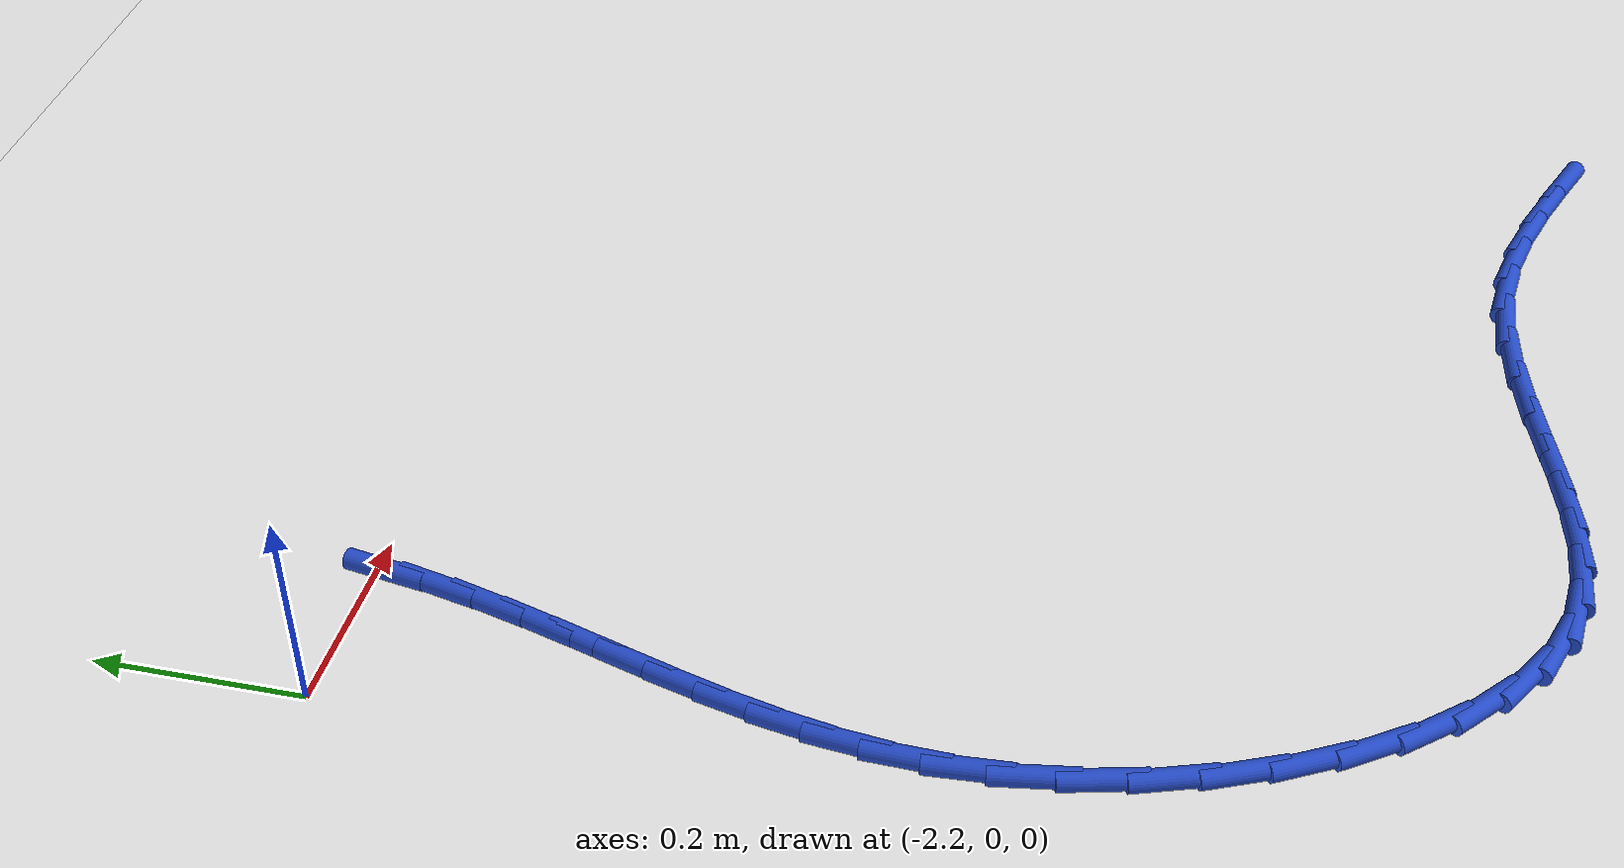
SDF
<sdf version="1.6">
 <world name="default">
  <model name="ground_plane">
   <static>1</static>
   <link name="link">
    <collision name="collision">
     <geometry><plane><normal>0 0 1</normal><size>100 100</size></plane></geometry>
     <surface><friction><ode><mu>100</mu><mu2>50</mu2></ode></friction></surface>
    </collision>
    <visual name="visual">
     <cast_shadows>0</cast_shadows>
     <geometry><plane><normal>0 0 1</normal><size>100 100</size></plane></geometry>
     <material>
      <script><uri>file://media/materials/scripts/gazebo.material</uri><name>Gazebo/WhiteGlow</name></script>
     </material>
    </visual>
   </link>
  </model>
  <model name="line">
   <link name="link_71">
    <pose>-2.041816086609694 -0.012602895293041863 0.01 0 1.57 1.4098534217162904</pose>
    <collision name="collision">
     <geometry><cylinder><radius>0.01</radius><length>0.08</length></cylinder></geometry>
    </collision>
    <visual name="visual">
     <material>
      <script><name>Gazebo/Blue</name><uri>file://media/materials/scripts/gazebo.material</uri></script>
     </material>
     <geometry><cylinder><radius>0.01</radius><length>0.08</length></cylinder></geometry>
    </visual>
   </link>
   <link name="link_72">
    <pose>-2.050435005796596 -0.06569236097580525 0.01 0 1.57 1.3537116298803245</pose>
    <collision name="collision">
     <geometry><cylinder><radius>0.01</radius><length>0.08</length></cylinder></geometry>
    </collision>
    <visual name="visual">
     <material>
      <script><name>Gazebo/Blue</name><uri>file://media/materials/scripts/gazebo.material</uri></script>
     </material>
     <geometry><cylinder><radius>0.01</radius><length>0.08</length></cylinder></geometry>
    </visual>
   </link>
   <link name="link_73">
    <pose>-2.061877272166428 -0.11757053309408935 0.01 0 1.57 1.3121732466424174</pose>
    <collision name="collision">
     <geometry><cylinder><radius>0.01</radius><length>0.08</length></cylinder></geometry>
    </collision>
    <visual name="visual">
     <material>
      <script><name>Gazebo/Blue</name><uri>file://media/materials/scripts/gazebo.material</uri></script>
     </material>
     <geometry><cylinder><radius>0.01</radius><length>0.08</length></cylinder></geometry>
    </visual>
   </link>
   <link name="link_74">
    <pose>-2.075354503261318 -0.1685149566995929 0.01 0 1.57 1.2859686330386246</pose>
    <collision name="collision">
     <geometry><cylinder><radius>0.01</radius><length>0.08</length></cylinder></geometry>
    </collision>
    <visual name="visual">
     <material>
      <script><name>Gazebo/Blue</name><uri>file://media/materials/scripts/gazebo.material</uri></script>
     </material>
     <geometry><cylinder><radius>0.01</radius><length>0.08</length></cylinder></geometry>
    </visual>
   </link>
   <link name="link_75">
    <pose>-2.090078316623393 -0.21880317684401698 0.01 0 1.57 1.2754995097951047</pose>
    <collision name="collision">
     <geometry><cylinder><radius>0.01</radius><length>0.08</length></cylinder></geometry>
    </collision>
    <visual name="visual">
     <material>
      <script><name>Gazebo/Blue</name><uri>file://media/materials/scripts/gazebo.material</uri></script>
     </material>
     <geometry><cylinder><radius>0.01</radius><length>0.08</length></cylinder></geometry>
    </visual>
   </link>
   <link name="link_76">
    <pose>-2.105260329794781 -0.268712738579062 0.01 0 1.57 1.281011062429523</pose>
    <collision name="collision">
     <geometry><cylinder><radius>0.01</radius><length>0.08</length></cylinder></geometry>
    </collision>
    <visual name="visual">
     <material>
      <script><name>Gazebo/Blue</name><uri>file://media/materials/scripts/gazebo.material</uri></script>
     </material>
     <geometry><cylinder><radius>0.01</radius><length>0.08</length></cylinder></geometry>
    </visual>
   </link>
   <link name="link_77">
    <pose>-2.1201121603176123 -0.31852118695642834 0.01 0 1.57 1.3026640490277204</pose>
    <collision name="collision">
     <geometry><cylinder><radius>0.01</radius><length>0.08</length></cylinder></geometry>
    </collision>
    <visual name="visual">
     <material>
      <script><name>Gazebo/Blue</name><uri>file://media/materials/scripts/gazebo.material</uri></script>
     </material>
     <geometry><cylinder><radius>0.01</radius><length>0.08</length></cylinder></geometry>
    </visual>
   </link>
   <link name="link_78">
    <pose>-2.1338454257340125 -0.36850606702781685 0.01 0 1.57 1.3404882086399208</pose>
    <collision name="collision">
     <geometry><cylinder><radius>0.01</radius><length>0.08</length></cylinder></geometry>
    </collision>
    <visual name="visual">
     <material>
      <script><name>Gazebo/Blue</name><uri>file://media/materials/scripts/gazebo.material</uri></script>
     </material>
     <geometry><cylinder><radius>0.01</radius><length>0.08</length></cylinder></geometry>
    </visual>
   </link>
   <link name="link_79">
    <pose>-2.145671743586111 -0.41894492384492665 0.01 0 1.57 1.3942120856133386</pose>
    <collision name="collision">
     <geometry><cylinder><radius>0.01</radius><length>0.08</length></cylinder></geometry>
    </collision>
    <visual name="visual">
     <material>
      <script><name>Gazebo/Blue</name><uri>file://media/materials/scripts/gazebo.material</uri></script>
     </material>
     <geometry><cylinder><radius>0.01</radius><length>0.08</length></cylinder></geometry>
    </visual>
   </link>
   <link name="link_80">
    <pose>-2.154802731416035 -0.47011530245945854 0.01 0 1.57 1.4629879823273253</pose>
    <collision name="collision">
     <geometry><cylinder><radius>0.01</radius><length>0.08</length></cylinder></geometry>
    </collision>
    <visual name="visual">
     <material>
      <script><name>Gazebo/Blue</name><uri>file://media/materials/scripts/gazebo.material</uri></script>
     </material>
     <geometry><cylinder><radius>0.01</radius><length>0.08</length></cylinder></geometry>
    </visual>
   </link>
   <link name="link_81">
    <pose>-2.160450006765913 -0.522294747923113 0.01 0 1.57 1.545081371370984</pose>
    <collision name="collision">
     <geometry><cylinder><radius>0.01</radius><length>0.08</length></cylinder></geometry>
    </collision>
    <visual name="visual">
     <material>
      <script><name>Gazebo/Blue</name><uri>file://media/materials/scripts/gazebo.material</uri></script>
     </material>
     <geometry><cylinder><radius>0.01</radius><length>0.08</length></cylinder></geometry>
    </visual>
   </link>
   <link name="link_82">
    <pose>-2.1618251871778735 -0.5757608052875912 0.01 0 1.57 -1.5039275746834406</pose>
    <collision name="collision">
     <geometry><cylinder><radius>0.01</radius><length>0.08</length></cylinder></geometry>
    </collision>
    <visual name="visual">
     <material>
      <script><name>Gazebo/Blue</name><uri>file://media/materials/scripts/gazebo.material</uri></script>
     </material>
     <geometry><cylinder><radius>0.01</radius><length>0.08</length></cylinder></geometry>
    </visual>
   </link>
   <link name="link_83">
    <pose>-2.1581398910065146 -0.6307910184904844 0.01 0 1.57 -1.4073664089988973</pose>
    <collision name="collision">
     <geometry><cylinder><radius>0.01</radius><length>0.08</length></cylinder></geometry>
    </collision>
    <visual name="visual">
     <material>
      <script><name>Gazebo/Blue</name><uri>file://media/materials/scripts/gazebo.material</uri></script>
     </material>
     <geometry><cylinder><radius>0.01</radius><length>0.08</length></cylinder></geometry>
    </visual>
   </link>
   <link name="link_84">
    <pose>-2.1488072384815595 -0.687386620226159 0.01 0 1.57 -1.3172382843445793</pose>
    <collision name="collision">
     <geometry><cylinder><radius>0.01</radius><length>0.08</length></cylinder></geometry>
    </collision>
    <visual name="visual">
     <material>
      <script><name>Gazebo/Blue</name><uri>file://media/materials/scripts/gazebo.material</uri></script>
     </material>
     <geometry><cylinder><radius>0.01</radius><length>0.08</length></cylinder></geometry>
    </visual>
   </link>
   <link name="link_85">
    <pose>-2.1340081942255127 -0.7444959297178624 0.01 0 1.57 -1.2311287377189504</pose>
    <collision name="collision">
     <geometry><cylinder><radius>0.01</radius><length>0.08</length></cylinder></geometry>
    </collision>
    <visual name="visual">
     <material>
      <script><name>Gazebo/Blue</name><uri>file://media/materials/scripts/gazebo.material</uri></script>
     </material>
     <geometry><cylinder><radius>0.01</radius><length>0.08</length></cylinder></geometry>
    </visual>
   </link>
   <link name="link_86">
    <pose>-2.1141065908210224 -0.8008165068677064 0.01 0 1.57 -1.1443124911233582</pose>
    <collision name="collision">
     <geometry><cylinder><radius>0.01</radius><length>0.08</length></cylinder></geometry>
    </collision>
    <visual name="visual">
     <material>
      <script><name>Gazebo/Blue</name><uri>file://media/materials/scripts/gazebo.material</uri></script>
     </material>
     <geometry><cylinder><radius>0.01</radius><length>0.08</length></cylinder></geometry>
    </visual>
   </link>
   <link name="link_87">
    <pose>-2.0894662608507377 -0.8550459115778044 0.01 0 1.57 -1.0521515799140335</pose>
    <collision name="collision">
     <geometry><cylinder><radius>0.01</radius><length>0.08</length></cylinder></geometry>
    </collision>
    <visual name="visual">
     <material>
      <script><name>Gazebo/Blue</name><uri>file://media/materials/scripts/gazebo.material</uri></script>
     </material>
     <geometry><cylinder><radius>0.01</radius><length>0.08</length></cylinder></geometry>
    </visual>
   </link>
   <link name="link_88">
    <pose>-2.060451036897307 -0.9058817037502667 0.01 0 1.57 -0.9495525976556473</pose>
    <collision name="collision">
     <geometry><cylinder><radius>0.01</radius><length>0.08</length></cylinder></geometry>
    </collision>
    <visual name="visual">
     <material>
      <script><name>Gazebo/Blue</name><uri>file://media/materials/scripts/gazebo.material</uri></script>
     </material>
     <geometry><cylinder><radius>0.01</radius><length>0.08</length></cylinder></geometry>
    </visual>
   </link>
   <link name="link_89">
    <pose>-2.0274247515433785 -0.9520214432872057 0.01 0 1.57 -0.8305116250608461</pose>
    <collision name="collision">
     <geometry><cylinder><radius>0.01</radius><length>0.08</length></cylinder></geometry>
    </collision>
    <visual name="visual">
     <material>
      <script><name>Gazebo/Blue</name><uri>file://media/materials/scripts/gazebo.material</uri></script>
     </material>
     <geometry><cylinder><radius>0.01</radius><length>0.08</length></cylinder></geometry>
    </visual>
   </link>
   <link name="link_90">
    <pose>-1.9907512373715994 -0.992162690090734 0.01 0 1.57 -0.6879486404382746</pose>
    <collision name="collision">
     <geometry><cylinder><radius>0.01</radius><length>0.08</length></cylinder></geometry>
    </collision>
    <visual name="visual">
     <material>
      <script><name>Gazebo/Blue</name><uri>file://media/materials/scripts/gazebo.material</uri></script>
     </material>
     <geometry><cylinder><radius>0.01</radius><length>0.08</length></cylinder></geometry>
    </visual>
   </link>
   <link name="link_91">
    <pose>-1.9507943269646197 -1.0250030040629643 0.01 0 1.57 -0.5144939502764552</pose>
    <collision name="collision">
     <geometry><cylinder><radius>0.01</radius><length>0.08</length></cylinder></geometry>
    </collision>
    <visual name="visual">
     <material>
      <script><name>Gazebo/Blue</name><uri>file://media/materials/scripts/gazebo.material</uri></script>
     </material>
     <geometry><cylinder><radius>0.01</radius><length>0.08</length></cylinder></geometry>
    </visual>
   </link>
   <link name="link_92">
    <pose>-1.9079178529050864 -1.0492399451060066 0.01 0 1.57 -0.3056353205813546</pose>
    <collision name="collision">
     <geometry><cylinder><radius>0.01</radius><length>0.08</length></cylinder></geometry>
    </collision>
    <visual name="visual">
     <material>
      <script><name>Gazebo/Blue</name><uri>file://media/materials/scripts/gazebo.material</uri></script>
     </material>
     <geometry><cylinder><radius>0.01</radius><length>0.08</length></cylinder></geometry>
    </visual>
   </link>
   <link name="link_93">
    <pose>-1.8624856074091414 -1.063574802433269 0.01 0 1.57 -0.08546857987774055</pose>
    <collision name="collision">
     <geometry><cylinder><radius>0.01</radius><length>0.08</length></cylinder></geometry>
    </collision>
    <visual name="visual">
     <material>
      <script><name>Gazebo/Blue</name><uri>file://media/materials/scripts/gazebo.material</uri></script>
     </material>
     <geometry><cylinder><radius>0.01</radius><length>0.08</length></cylinder></geometry>
    </visual>
   </link>
   <link name="link_94">
    <pose>-1.8148511308385575 -1.0676559958821255 0.01 0 1.57 0.08720620300349631</pose>
    <collision name="collision">
     <geometry><cylinder><radius>0.01</radius><length>0.08</length></cylinder></geometry>
    </collision>
    <visual name="visual">
     <material>
      <script><name>Gazebo/Blue</name><uri>file://media/materials/scripts/gazebo.material</uri></script>
     </material>
     <geometry><cylinder><radius>0.01</radius><length>0.08</length></cylinder></geometry>
    </visual>
   </link>
   <link name="link_95">
    <pose>-1.7653441963756578 -1.0633277064374638 0.01 0 1.57 0.20440431136502302</pose>
    <collision name="collision">
     <geometry><cylinder><radius>0.01</radius><length>0.08</length></cylinder></geometry>
    </collision>
    <visual name="visual">
     <material>
      <script><name>Gazebo/Blue</name><uri>file://media/materials/scripts/gazebo.material</uri></script>
     </material>
     <geometry><cylinder><radius>0.01</radius><length>0.08</length></cylinder></geometry>
    </visual>
   </link>
   <link name="link_96">
    <pose>-1.7142912180795937 -1.0527444519570812 0.01 0 1.57 0.27384885898415534</pose>
    <collision name="collision">
     <geometry><cylinder><radius>0.01</radius><length>0.08</length></cylinder></geometry>
    </collision>
    <visual name="visual">
     <material>
      <script><name>Gazebo/Blue</name><uri>file://media/materials/scripts/gazebo.material</uri></script>
     </material>
     <geometry><cylinder><radius>0.01</radius><length>0.08</length></cylinder></geometry>
    </visual>
   </link>
   <link name="link_97">
    <pose>-1.662018610009516 -1.0380607502987762 0.01 0 1.57 0.3031472118898818</pose>
    <collision name="collision">
     <geometry><cylinder><radius>0.01</radius><length>0.08</length></cylinder></geometry>
    </collision>
    <visual name="visual">
     <material>
      <script><name>Gazebo/Blue</name><uri>file://media/materials/scripts/gazebo.material</uri></script>
     </material>
     <geometry><cylinder><radius>0.01</radius><length>0.08</length></cylinder></geometry>
    </visual>
   </link>
   <link name="link_98">
    <pose>-1.6088527862245754 -1.0214311193203454 0.01 0 1.57 0.2965924510276212</pose>
    <collision name="collision">
     <geometry><cylinder><radius>0.01</radius><length>0.08</length></cylinder></geometry>
    </collision>
    <visual name="visual">
     <material>
      <script><name>Gazebo/Blue</name><uri>file://media/materials/scripts/gazebo.material</uri></script>
     </material>
     <geometry><cylinder><radius>0.01</radius><length>0.08</length></cylinder></geometry>
    </visual>
   </link>
   <link name="link_99">
    <pose>-1.5551201607839236 -1.0050100768795873 0.01 0 1.57 0.2548010532948569</pose>
    <collision name="collision">
     <geometry><cylinder><radius>0.01</radius><length>0.08</length></cylinder></geometry>
    </collision>
    <visual name="visual">
     <material>
      <script><name>Gazebo/Blue</name><uri>file://media/materials/scripts/gazebo.material</uri></script>
     </material>
     <geometry><cylinder><radius>0.01</radius><length>0.08</length></cylinder></geometry>
    </visual>
   </link>
   <link name="link_100">
    <pose>-1.5011471477467095 -0.9909521408342992 0.01 0 1.57 0.1752272332510406</pose>
    <collision name="collision">
     <geometry><cylinder><radius>0.01</radius><length>0.08</length></cylinder></geometry>
    </collision>
    <visual name="visual">
     <material>
      <script><name>Gazebo/Blue</name><uri>file://media/materials/scripts/gazebo.material</uri></script>
     </material>
     <geometry><cylinder><radius>0.01</radius><length>0.08</length></cylinder></geometry>
    </visual>
   </link>
   <link name="link_101">
    <pose>-1.4472601611720872 -0.9814118290422792 0.01 0 1.57 0.05374125069389316</pose>
    <collision name="collision">
     <geometry><cylinder><radius>0.01</radius><length>0.08</length></cylinder></geometry>
    </collision>
    <visual name="visual">
     <material>
      <script><name>Gazebo/Blue</name><uri>file://media/materials/scripts/gazebo.material</uri></script>
     </material>
     <geometry><cylinder><radius>0.01</radius><length>0.08</length></cylinder></geometry>
    </visual>
   </link>
   <link name="link_102">
    <pose>-1.3937847885720749 -0.9785352257769919 0.01 0 1.57 -0.0895634365511266</pose>
    <collision name="collision">
     <geometry><cylinder><radius>0.01</radius><length>0.08</length></cylinder></geometry>
    </collision>
    <visual name="visual">
     <material>
      <script><name>Gazebo/Blue</name><uri>file://media/materials/scripts/gazebo.material</uri></script>
     </material>
     <geometry><cylinder><radius>0.01</radius><length>0.08</length></cylinder></geometry>
    </visual>
   </link>
   <link name="link_103">
    <pose>-1.3409303166233932 -0.9832817523077103 0.01 0 1.57 -0.2061603961926611</pose>
    <collision name="collision">
     <geometry><cylinder><radius>0.01</radius><length>0.08</length></cylinder></geometry>
    </collision>
    <visual name="visual">
     <material>
      <script><name>Gazebo/Blue</name><uri>file://media/materials/scripts/gazebo.material</uri></script>
     </material>
     <geometry><cylinder><radius>0.01</radius><length>0.08</length></cylinder></geometry>
    </visual>
   </link>
   <link name="link_104">
    <pose>-1.2886708198576018 -0.9942108682001728 0.01 0 1.57 -0.28907804782855057</pose>
    <collision name="collision">
     <geometry><cylinder><radius>0.01</radius><length>0.08</length></cylinder></geometry>
    </collision>
    <visual name="visual">
     <material>
      <script><name>Gazebo/Blue</name><uri>file://media/materials/scripts/gazebo.material</uri></script>
     </material>
     <geometry><cylinder><radius>0.01</radius><length>0.08</length></cylinder></geometry>
    </visual>
   </link>
   <link name="link_105">
    <pose>-1.2369519978161658 -1.009592511875211 0.01 0 1.57 -0.3396756180776072</pose>
    <collision name="collision">
     <geometry><cylinder><radius>0.01</radius><length>0.08</length></cylinder></geometry>
    </collision>
    <visual name="visual">
     <material>
      <script><name>Gazebo/Blue</name><uri>file://media/materials/scripts/gazebo.material</uri></script>
     </material>
     <geometry><cylinder><radius>0.01</radius><length>0.08</length></cylinder></geometry>
    </visual>
   </link>
   <link name="link_106">
    <pose>-1.1857195500405482 -1.0276966217536565 0.01 0 1.57 -0.35957075655431037</pose>
    <collision name="collision">
     <geometry><cylinder><radius>0.01</radius><length>0.08</length></cylinder></geometry>
    </collision>
    <visual name="visual">
     <material>
      <script><name>Gazebo/Blue</name><uri>file://media/materials/scripts/gazebo.material</uri></script>
     </material>
     <geometry><cylinder><radius>0.01</radius><length>0.08</length></cylinder></geometry>
    </visual>
   </link>
  </model>
 </world>
</sdf>
